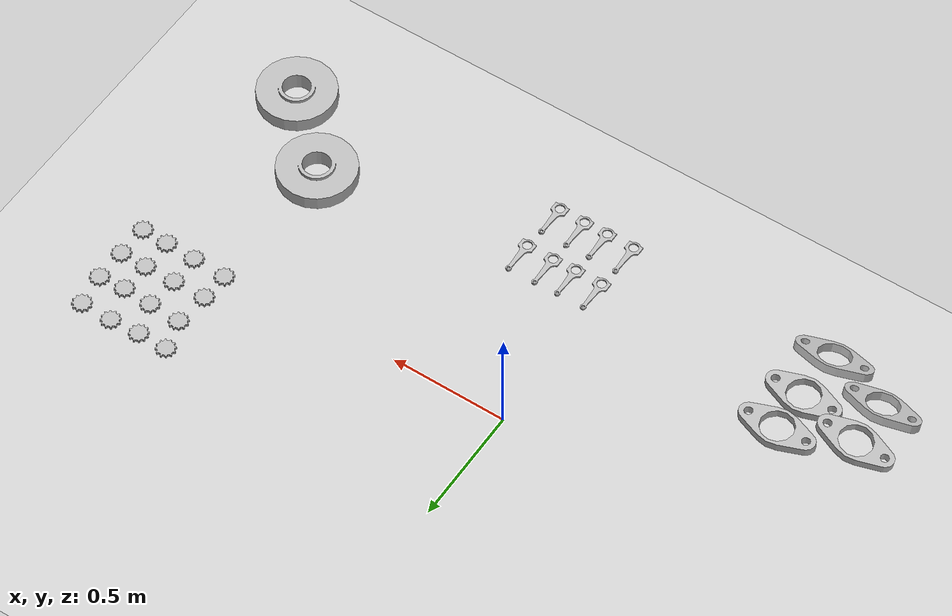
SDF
<sdf version="1.6">
 <world name="default">
  <light name="sun" type="directional">
   <pose>0 0 10 0 -0 0</pose>
   <diffuse>0.8 0.8 0.8 1</diffuse>
   <specular>0.1 0.1 0.1 1</specular>
   <attenuation>
    <range>1000</range>
    <constant>0.9</constant>
    <linear>0.01</linear>
    <quadratic>0.001</quadratic>
   </attenuation>
   <direction>-0.5 0.5 -1</direction>
  </light>
  <model name="ground_plane">
   <static>1</static>
   <link name="link">
    <collision name="collision">
     <geometry><plane><normal>0 0 1</normal><size>100 100</size></plane></geometry>
     <surface><friction><ode><mu>0.1</mu><mu2>0.05</mu2></ode></friction></surface>
    </collision>
    <visual name="visual">
     <cast_shadows>0</cast_shadows>
     <geometry><plane><normal>0 0 1</normal><size>100 100</size></plane></geometry>
     <material>
      <script><uri>file://media/materials/scripts/gazebo.material</uri><name>Gazebo/Grey</name></script>
     </material>
    </visual>
   </link>
  </model>
  <gravity>0 0 -9.8</gravity>
  <magnetic_field>6e-06 2.3e-05 -4.2e-05</magnetic_field>
  <atmosphere type="adiabatic"/>
  <physics name="default_physics" default="0" type="ode">
   <max_step_size>0.001</max_step_size>
   <real_time_factor>1</real_time_factor>
   <real_time_update_rate>1000</real_time_update_rate>
  </physics>
  <scene><ambient>0.4 0.4 0.4 1</ambient><background>0.7 0.7 0.7 1</background><shadows>1</shadows></scene>
  <spherical_coordinates>
   <surface_model>EARTH_WGS84</surface_model>
   <latitude_deg>0</latitude_deg>
   <longitude_deg>0</longitude_deg>
   <elevation>0</elevation>
   <heading_deg>0</heading_deg>
  </spherical_coordinates>
  <model name="disk_part">
   <link name="link">
    <inertial>
     <pose>0 0 0.02895 0 -0 0</pose>
     <mass>0.5</mass>
     <inertia>
      <ixx>0.00321218</ixx>
      <ixy>0</ixy>
      <ixz>0</ixz>
      <iyy>0.00321218</iyy>
      <iyz>0</iyz>
      <izz>0.00614499</izz>
     </inertia>
    </inertial>
    <collision name="collision">
     <pose>0 0 0.02895 0 -0 0</pose>
     <geometry><cylinder><length>0.0579</length><radius>0.15678</radius></cylinder></geometry>
    </collision>
    <visual name="visual">
     <geometry><mesh><uri>model://disk_part/meshes/disk.dae</uri><scale>1 1 1</scale></mesh></geometry>
     <material>
      <script>
       <uri>model://arm_part/materials/scripts</uri>
       <uri>model://arm_part/materials/textures</uri>
       <name>ArmPart/Diffuse</name>
      </script>
     </material>
    </visual>
   </link>
   <pose>1.18352 -0.375787 0.72499 0 -0 0</pose>
  </model>
  <model name="disk_part_clone">
   <link name="link">
    <inertial>
     <pose>0 0 0.02895 0 -0 0</pose>
     <mass>0.5</mass>
     <inertia>
      <ixx>0.00321218</ixx>
      <ixy>0</ixy>
      <ixz>0</ixz>
      <iyy>0.00321218</iyy>
      <iyz>0</iyz>
      <izz>0.00614499</izz>
     </inertia>
    </inertial>
    <collision name="collision">
     <pose>0 0 0.02895 0 -0 0</pose>
     <geometry><cylinder><length>0.0579</length><radius>0.15678</radius></cylinder></geometry>
    </collision>
    <visual name="visual">
     <geometry><mesh><uri>model://disk_part/meshes/disk.dae</uri><scale>1 1 1</scale></mesh></geometry>
     <material>
      <script>
       <uri>model://arm_part/materials/scripts</uri>
       <uri>model://arm_part/materials/textures</uri>
       <name>ArmPart/Diffuse</name>
      </script>
     </material>
    </visual>
   </link>
   <pose>0.909632 -0.118212 0.725007 -2.9e-05 3.3e-05 -8e-06</pose>
  </model>
  <model name="piston_rod_part">
   <link name="link">
    <inertial>
     <pose>0 0.05415 0.00355 0 -0 0</pose>
     <mass>0.5</mass>
     <inertia>
      <ixx>0.00109584</ixx>
      <ixy>0</ixy>
      <ixz>0</ixz>
      <iyy>4.23854e-05</iyy>
      <iyz>0</iyz>
      <izz>0.00113354</izz>
     </inertia>
    </inertial>
    <collision name="collision_1">
     <pose>0 0 0.00375 0 -0 0</pose>
     <geometry><box><size>0.059 0.052 0.0075</size></box></geometry>
     <surface><contact><ode><max_vel>0.1</max_vel><min_depth>0.001</min_depth></ode></contact></surface>
    </collision>
    <collision name="collision_2">
     <pose>0 0.08 0.00375 0 -0 0</pose>
     <geometry><box><size>0.031 0.11 0.0075</size></box></geometry>
     <surface><contact><ode><max_vel>0.1</max_vel><min_depth>0.001</min_depth></ode></contact></surface>
    </collision>
    <visual name="visual">
     <geometry>
      <mesh><uri>model://piston_rod_part/meshes/piston_rod.dae</uri><scale>0.25 0.25 0.25</scale></mesh>
     </geometry>
     <material>
      <script>
       <uri>model://arm_part/materials/scripts</uri>
       <uri>model://arm_part/materials/textures</uri>
       <name>ArmPart/Diffuse</name>
      </script>
     </material>
    </visual>
   </link>
   <pose>0.071775 -0.483737 0.724744 0 -0 0</pose>
  </model>
  <model name="piston_rod_part_clone">
   <link name="link">
    <inertial>
     <pose>0 0.05415 0.00355 0 -0 0</pose>
     <mass>0.5</mass>
     <inertia>
      <ixx>0.00109584</ixx>
      <ixy>0</ixy>
      <ixz>0</ixz>
      <iyy>4.23854e-05</iyy>
      <iyz>0</iyz>
      <izz>0.00113354</izz>
     </inertia>
    </inertial>
    <collision name="collision_1">
     <pose>0 0 0.00375 0 -0 0</pose>
     <geometry><box><size>0.059 0.052 0.0075</size></box></geometry>
     <surface><contact><ode><max_vel>0.1</max_vel><min_depth>0.001</min_depth></ode></contact></surface>
    </collision>
    <collision name="collision_2">
     <pose>0 0.08 0.00375 0 -0 0</pose>
     <geometry><box><size>0.031 0.11 0.0075</size></box></geometry>
     <surface><contact><ode><max_vel>0.1</max_vel><min_depth>0.001</min_depth></ode></contact></surface>
    </collision>
    <visual name="visual">
     <geometry>
      <mesh><uri>model://piston_rod_part/meshes/piston_rod.dae</uri><scale>0.25 0.25 0.25</scale></mesh>
     </geometry>
     <material>
      <script>
       <uri>model://arm_part/materials/scripts</uri>
       <uri>model://arm_part/materials/textures</uri>
       <name>ArmPart/Diffuse</name>
      </script>
     </material>
    </visual>
   </link>
   <pose>-0.037775 -0.482662 0.724744 0 -0 0</pose>
  </model>
  <model name="piston_rod_part_clone_0">
   <link name="link">
    <inertial>
     <pose>0 0.05415 0.00355 0 -0 0</pose>
     <mass>0.5</mass>
     <inertia>
      <ixx>0.00109584</ixx>
      <ixy>0</ixy>
      <ixz>0</ixz>
      <iyy>4.23854e-05</iyy>
      <iyz>0</iyz>
      <izz>0.00113354</izz>
     </inertia>
    </inertial>
    <collision name="collision_1">
     <pose>0 0 0.00375 0 -0 0</pose>
     <geometry><box><size>0.059 0.052 0.0075</size></box></geometry>
     <surface><contact><ode><max_vel>0.1</max_vel><min_depth>0.001</min_depth></ode></contact></surface>
    </collision>
    <collision name="collision_2">
     <pose>0 0.08 0.00375 0 -0 0</pose>
     <geometry><box><size>0.031 0.11 0.0075</size></box></geometry>
     <surface><contact><ode><max_vel>0.1</max_vel><min_depth>0.001</min_depth></ode></contact></surface>
    </collision>
    <visual name="visual">
     <geometry>
      <mesh><uri>model://piston_rod_part/meshes/piston_rod.dae</uri><scale>0.25 0.25 0.25</scale></mesh>
     </geometry>
     <material>
      <script>
       <uri>model://arm_part/materials/scripts</uri>
       <uri>model://arm_part/materials/textures</uri>
       <name>ArmPart/Diffuse</name>
      </script>
     </material>
    </visual>
   </link>
   <pose>-0.13674 -0.483777 0.724744 0 -0 0</pose>
  </model>
  <model name="piston_rod_part_clone_1">
   <link name="link">
    <inertial>
     <pose>0 0.05415 0.00355 0 -0 0</pose>
     <mass>0.5</mass>
     <inertia>
      <ixx>0.00109584</ixx>
      <ixy>0</ixy>
      <ixz>0</ixz>
      <iyy>4.23854e-05</iyy>
      <iyz>0</iyz>
      <izz>0.00113354</izz>
     </inertia>
    </inertial>
    <collision name="collision_1">
     <pose>0 0 0.00375 0 -0 0</pose>
     <geometry><box><size>0.059 0.052 0.0075</size></box></geometry>
     <surface><contact><ode><max_vel>0.1</max_vel><min_depth>0.001</min_depth></ode></contact></surface>
    </collision>
    <collision name="collision_2">
     <pose>0 0.08 0.00375 0 -0 0</pose>
     <geometry><box><size>0.031 0.11 0.0075</size></box></geometry>
     <surface><contact><ode><max_vel>0.1</max_vel><min_depth>0.001</min_depth></ode></contact></surface>
    </collision>
    <visual name="visual">
     <geometry>
      <mesh><uri>model://piston_rod_part/meshes/piston_rod.dae</uri><scale>0.25 0.25 0.25</scale></mesh>
     </geometry>
     <material>
      <script>
       <uri>model://arm_part/materials/scripts</uri>
       <uri>model://arm_part/materials/textures</uri>
       <name>ArmPart/Diffuse</name>
      </script>
     </material>
    </visual>
   </link>
   <pose>-0.251597 -0.484031 0.724744 0 -0 0</pose>
  </model>
  <model name="piston_rod_part_clone_2">
   <link name="link">
    <inertial>
     <pose>0 0.05415 0.00355 0 -0 0</pose>
     <mass>0.5</mass>
     <inertia>
      <ixx>0.00109584</ixx>
      <ixy>0</ixy>
      <ixz>0</ixz>
      <iyy>4.23854e-05</iyy>
      <iyz>0</iyz>
      <izz>0.00113354</izz>
     </inertia>
    </inertial>
    <collision name="collision_1">
     <pose>0 0 0.00375 0 -0 0</pose>
     <geometry><box><size>0.059 0.052 0.0075</size></box></geometry>
     <surface><contact><ode><max_vel>0.1</max_vel><min_depth>0.001</min_depth></ode></contact></surface>
    </collision>
    <collision name="collision_2">
     <pose>0 0.08 0.00375 0 -0 0</pose>
     <geometry><box><size>0.031 0.11 0.0075</size></box></geometry>
     <surface><contact><ode><max_vel>0.1</max_vel><min_depth>0.001</min_depth></ode></contact></surface>
    </collision>
    <visual name="visual">
     <geometry>
      <mesh><uri>model://piston_rod_part/meshes/piston_rod.dae</uri><scale>0.25 0.25 0.25</scale></mesh>
     </geometry>
     <material>
      <script>
       <uri>model://arm_part/materials/scripts</uri>
       <uri>model://arm_part/materials/textures</uri>
       <name>ArmPart/Diffuse</name>
      </script>
     </material>
    </visual>
   </link>
   <pose>0.07925 -0.276544 0.724744 0 -0 0</pose>
  </model>
  <model name="piston_rod_part_clone_3">
   <link name="link">
    <inertial>
     <pose>0 0.05415 0.00355 0 -0 0</pose>
     <mass>0.5</mass>
     <inertia>
      <ixx>0.00109584</ixx>
      <ixy>0</ixy>
      <ixz>0</ixz>
      <iyy>4.23854e-05</iyy>
      <iyz>0</iyz>
      <izz>0.00113354</izz>
     </inertia>
    </inertial>
    <collision name="collision_1">
     <pose>0 0 0.00375 0 -0 0</pose>
     <geometry><box><size>0.059 0.052 0.0075</size></box></geometry>
     <surface><contact><ode><max_vel>0.1</max_vel><min_depth>0.001</min_depth></ode></contact></surface>
    </collision>
    <collision name="collision_2">
     <pose>0 0.08 0.00375 0 -0 0</pose>
     <geometry><box><size>0.031 0.11 0.0075</size></box></geometry>
     <surface><contact><ode><max_vel>0.1</max_vel><min_depth>0.001</min_depth></ode></contact></surface>
    </collision>
    <visual name="visual">
     <geometry>
      <mesh><uri>model://piston_rod_part/meshes/piston_rod.dae</uri><scale>0.25 0.25 0.25</scale></mesh>
     </geometry>
     <material>
      <script>
       <uri>model://arm_part/materials/scripts</uri>
       <uri>model://arm_part/materials/textures</uri>
       <name>ArmPart/Diffuse</name>
      </script>
     </material>
    </visual>
   </link>
   <pose>-0.034332 -0.276824 0.724744 0 -0 0</pose>
  </model>
  <model name="piston_rod_part_clone_4">
   <link name="link">
    <inertial>
     <pose>0 0.05415 0.00355 0 -0 0</pose>
     <mass>0.5</mass>
     <inertia>
      <ixx>0.00109584</ixx>
      <ixy>0</ixy>
      <ixz>0</ixz>
      <iyy>4.23854e-05</iyy>
      <iyz>0</iyz>
      <izz>0.00113354</izz>
     </inertia>
    </inertial>
    <collision name="collision_1">
     <pose>0 0 0.00375 0 -0 0</pose>
     <geometry><box><size>0.059 0.052 0.0075</size></box></geometry>
     <surface><contact><ode><max_vel>0.1</max_vel><min_depth>0.001</min_depth></ode></contact></surface>
    </collision>
    <collision name="collision_2">
     <pose>0 0.08 0.00375 0 -0 0</pose>
     <geometry><box><size>0.031 0.11 0.0075</size></box></geometry>
     <surface><contact><ode><max_vel>0.1</max_vel><min_depth>0.001</min_depth></ode></contact></surface>
    </collision>
    <visual name="visual">
     <geometry>
      <mesh><uri>model://piston_rod_part/meshes/piston_rod.dae</uri><scale>0.25 0.25 0.25</scale></mesh>
     </geometry>
     <material>
      <script>
       <uri>model://arm_part/materials/scripts</uri>
       <uri>model://arm_part/materials/textures</uri>
       <name>ArmPart/Diffuse</name>
      </script>
     </material>
    </visual>
   </link>
   <pose>-0.130835 -0.280946 0.724744 0 -0 0</pose>
  </model>
  <model name="piston_rod_part_clone_5">
   <link name="link">
    <inertial>
     <pose>0 0.05415 0.00355 0 -0 0</pose>
     <mass>0.5</mass>
     <inertia>
      <ixx>0.00109584</ixx>
      <ixy>0</ixy>
      <ixz>0</ixz>
      <iyy>4.23854e-05</iyy>
      <iyz>0</iyz>
      <izz>0.00113354</izz>
     </inertia>
    </inertial>
    <collision name="collision_1">
     <pose>0 0 0.00375 0 -0 0</pose>
     <geometry><box><size>0.059 0.052 0.0075</size></box></geometry>
     <surface><contact><ode><max_vel>0.1</max_vel><min_depth>0.001</min_depth></ode></contact></surface>
    </collision>
    <collision name="collision_2">
     <pose>0 0.08 0.00375 0 -0 0</pose>
     <geometry><box><size>0.031 0.11 0.0075</size></box></geometry>
     <surface><contact><ode><max_vel>0.1</max_vel><min_depth>0.001</min_depth></ode></contact></surface>
    </collision>
    <visual name="visual">
     <geometry>
      <mesh><uri>model://piston_rod_part/meshes/piston_rod.dae</uri><scale>0.25 0.25 0.25</scale></mesh>
     </geometry>
     <material>
      <script>
       <uri>model://arm_part/materials/scripts</uri>
       <uri>model://arm_part/materials/textures</uri>
       <name>ArmPart/Diffuse</name>
      </script>
     </material>
    </visual>
   </link>
   <pose>-0.243121 -0.280902 0.724744 0 -0 0</pose>
  </model>
  <model name="gasket_part">
   <link name="link">
    <inertial>
     <pose>0 0 0.016955 0 -0 0</pose>
     <mass>0.5</mass>
     <inertia>
      <ixx>0.00107286</ixx>
      <ixy>0</ixy>
      <ixz>0</ixz>
      <iyy>0.00416708</iyy>
      <iyz>0</iyz>
      <izz>0.00514411</izz>
     </inertia>
    </inertial>
    <collision name="collision">
     <pose>0 0 0.016955 0 -0 0</pose>
     <geometry><box><size>0.31442 0.15684 0.03391</size></box></geometry>
    </collision>
    <visual name="visual">
     <geometry><mesh><uri>model://gasket_part/meshes/gasket.dae</uri><scale>1 1 1</scale></mesh></geometry>
     <material>
      <script>
       <uri>model://arm_part/materials/scripts</uri>
       <uri>model://arm_part/materials/textures</uri>
       <name>ArmPart/Diffuse</name>
      </script>
     </material>
    </visual>
   </link>
   <pose>-1.13131 -0.434738 0.75381 0.3537 0.010481 0.057385</pose>
  </model>
  <model name="gasket_part_clone">
   <link name="link">
    <inertial>
     <pose>0 0 0.016955 0 -0 0</pose>
     <mass>0.5</mass>
     <inertia>
      <ixx>0.00107286</ixx>
      <ixy>0</ixy>
      <ixz>0</ixz>
      <iyy>0.00416708</iyy>
      <iyz>0</iyz>
      <izz>0.00514411</izz>
     </inertia>
    </inertial>
    <collision name="collision">
     <pose>0 0 0.016955 0 -0 0</pose>
     <geometry><box><size>0.31442 0.15684 0.03391</size></box></geometry>
    </collision>
    <visual name="visual">
     <geometry><mesh><uri>model://gasket_part/meshes/gasket.dae</uri><scale>1 1 1</scale></mesh></geometry>
     <material>
      <script>
       <uri>model://arm_part/materials/scripts</uri>
       <uri>model://arm_part/materials/textures</uri>
       <name>ArmPart/Diffuse</name>
      </script>
     </material>
    </visual>
   </link>
   <pose>-1.11833 -0.254821 0.725 1.8e-05 1e-06 -0.022449</pose>
  </model>
  <model name="gasket_part_clone_0">
   <link name="link">
    <inertial>
     <pose>0 0 0.016955 0 -0 0</pose>
     <mass>0.5</mass>
     <inertia>
      <ixx>0.00107286</ixx>
      <ixy>0</ixy>
      <ixz>0</ixz>
      <iyy>0.00416708</iyy>
      <iyz>0</iyz>
      <izz>0.00514411</izz>
     </inertia>
    </inertial>
    <collision name="collision">
     <pose>0 0 0.016955 0 -0 0</pose>
     <geometry><box><size>0.31442 0.15684 0.03391</size></box></geometry>
    </collision>
    <visual name="visual">
     <geometry><mesh><uri>model://gasket_part/meshes/gasket.dae</uri><scale>1 1 1</scale></mesh></geometry>
     <material>
      <script>
       <uri>model://arm_part/materials/scripts</uri>
       <uri>model://arm_part/materials/textures</uri>
       <name>ArmPart/Diffuse</name>
      </script>
     </material>
    </visual>
   </link>
   <pose>-1.11188 -0.083787 0.724991 0.000117 -0 1.2e-05</pose>
  </model>
  <model name="gasket_part_clone_1">
   <link name="link">
    <inertial>
     <pose>0 0 0.016955 0 -0 0</pose>
     <mass>0.5</mass>
     <inertia>
      <ixx>0.00107286</ixx>
      <ixy>0</ixy>
      <ixz>0</ixz>
      <iyy>0.00416708</iyy>
      <iyz>0</iyz>
      <izz>0.00514411</izz>
     </inertia>
    </inertial>
    <collision name="collision">
     <pose>0 0 0.016955 0 -0 0</pose>
     <geometry><box><size>0.31442 0.15684 0.03391</size></box></geometry>
    </collision>
    <visual name="visual">
     <geometry><mesh><uri>model://gasket_part/meshes/gasket.dae</uri><scale>1 1 1</scale></mesh></geometry>
     <material>
      <script>
       <uri>model://arm_part/materials/scripts</uri>
       <uri>model://arm_part/materials/textures</uri>
       <name>ArmPart/Diffuse</name>
      </script>
     </material>
    </visual>
   </link>
   <pose>-1.37875 -0.173435 0.745388 -0.004117 -0.127998 0.007537</pose>
  </model>
  <model name="gasket_part_clone_2">
   <link name="link">
    <inertial>
     <pose>0 0 0.016955 0 -0 0</pose>
     <mass>0.5</mass>
     <inertia>
      <ixx>0.00107286</ixx>
      <ixy>0</ixy>
      <ixz>0</ixz>
      <iyy>0.00416708</iyy>
      <iyz>0</iyz>
      <izz>0.00514411</izz>
     </inertia>
    </inertial>
    <collision name="collision">
     <pose>0 0 0.016955 0 -0 0</pose>
     <geometry><box><size>0.31442 0.15684 0.03391</size></box></geometry>
    </collision>
    <visual name="visual">
     <geometry><mesh><uri>model://gasket_part/meshes/gasket.dae</uri><scale>1 1 1</scale></mesh></geometry>
     <material>
      <script>
       <uri>model://arm_part/materials/scripts</uri>
       <uri>model://arm_part/materials/textures</uri>
       <name>ArmPart/Diffuse</name>
      </script>
     </material>
    </visual>
   </link>
   <pose>-1.38308 -0.347728 0.752064 0.35266 -0.000478 -0.009648</pose>
  </model>
  <model name="gear_part">
   <link name="link">
    <inertial>
     <pose>0 0 0.005875 0 -0 0</pose>
     <mass>0.5</mass>
     <inertia>
      <ixx>0.000198203</ixx>
      <ixy>0</ixy>
      <ixz>0</ixz>
      <iyy>0.000198203</iyy>
      <iyz>0</iyz>
      <izz>0.000384405</izz>
     </inertia>
    </inertial>
    <collision name="collision">
     <pose>0 0 0.005875 0 -0 0</pose>
     <geometry><cylinder><length>0.012</length><radius>0.0392125</radius></cylinder></geometry>
     <surface><contact><ode><max_vel>0.1</max_vel><min_depth>0.001</min_depth></ode></contact></surface>
    </collision>
    <visual name="visual">
     <geometry><mesh><uri>model://gear_part/meshes/gear.dae</uri><scale>0.25 0.25 0.25</scale></mesh></geometry>
     <material>
      <script>
       <uri>model://arm_part/materials/scripts</uri>
       <uri>model://arm_part/materials/textures</uri>
       <name>ArmPart/Diffuse</name>
      </script>
     </material>
    </visual>
   </link>
   <pose>1.29297 0.450442 0.724603 0 -0 0</pose>
  </model>
  <model name="gear_part_clone">
   <link name="link">
    <inertial>
     <pose>0 0 0.005875 0 -0 0</pose>
     <mass>0.5</mass>
     <inertia>
      <ixx>0.000198203</ixx>
      <ixy>0</ixy>
      <ixz>0</ixz>
      <iyy>0.000198203</iyy>
      <iyz>0</iyz>
      <izz>0.000384405</izz>
     </inertia>
    </inertial>
    <collision name="collision">
     <pose>0 0 0.005875 0 -0 0</pose>
     <geometry><cylinder><length>0.012</length><radius>0.0392125</radius></cylinder></geometry>
     <surface><contact><ode><max_vel>0.1</max_vel><min_depth>0.001</min_depth></ode></contact></surface>
    </collision>
    <visual name="visual">
     <geometry><mesh><uri>model://gear_part/meshes/gear.dae</uri><scale>0.25 0.25 0.25</scale></mesh></geometry>
     <material>
      <script>
       <uri>model://arm_part/materials/scripts</uri>
       <uri>model://arm_part/materials/textures</uri>
       <name>ArmPart/Diffuse</name>
      </script>
     </material>
    </visual>
   </link>
   <pose>1.18312 0.452131 0.724603 0 -0 0</pose>
  </model>
  <model name="gear_part_clone_0">
   <link name="link">
    <inertial>
     <pose>0 0 0.005875 0 -0 0</pose>
     <mass>0.5</mass>
     <inertia>
      <ixx>0.000198203</ixx>
      <ixy>0</ixy>
      <ixz>0</ixz>
      <iyy>0.000198203</iyy>
      <iyz>0</iyz>
      <izz>0.000384405</izz>
     </inertia>
    </inertial>
    <collision name="collision">
     <pose>0 0 0.005875 0 -0 0</pose>
     <geometry><cylinder><length>0.012</length><radius>0.0392125</radius></cylinder></geometry>
     <surface><contact><ode><max_vel>0.1</max_vel><min_depth>0.001</min_depth></ode></contact></surface>
    </collision>
    <visual name="visual">
     <geometry><mesh><uri>model://gear_part/meshes/gear.dae</uri><scale>0.25 0.25 0.25</scale></mesh></geometry>
     <material>
      <script>
       <uri>model://arm_part/materials/scripts</uri>
       <uri>model://arm_part/materials/textures</uri>
       <name>ArmPart/Diffuse</name>
      </script>
     </material>
    </visual>
   </link>
   <pose>1.05814 0.454116 0.724603 0 -0 0</pose>
  </model>
  <model name="gear_part_clone_1">
   <link name="link">
    <inertial>
     <pose>0 0 0.005875 0 -0 0</pose>
     <mass>0.5</mass>
     <inertia>
      <ixx>0.000198203</ixx>
      <ixy>0</ixy>
      <ixz>0</ixz>
      <iyy>0.000198203</iyy>
      <iyz>0</iyz>
      <izz>0.000384405</izz>
     </inertia>
    </inertial>
    <collision name="collision">
     <pose>0 0 0.005875 0 -0 0</pose>
     <geometry><cylinder><length>0.012</length><radius>0.0392125</radius></cylinder></geometry>
     <surface><contact><ode><max_vel>0.1</max_vel><min_depth>0.001</min_depth></ode></contact></surface>
    </collision>
    <visual name="visual">
     <geometry><mesh><uri>model://gear_part/meshes/gear.dae</uri><scale>0.25 0.25 0.25</scale></mesh></geometry>
     <material>
      <script>
       <uri>model://arm_part/materials/scripts</uri>
       <uri>model://arm_part/materials/textures</uri>
       <name>ArmPart/Diffuse</name>
      </script>
     </material>
    </visual>
   </link>
   <pose>0.918428 0.458227 0.724603 0 -0 0</pose>
  </model>
  <model name="gear_part_clone_2">
   <link name="link">
    <inertial>
     <pose>0 0 0.005875 0 -0 0</pose>
     <mass>0.5</mass>
     <inertia>
      <ixx>0.000198203</ixx>
      <ixy>0</ixy>
      <ixz>0</ixz>
      <iyy>0.000198203</iyy>
      <iyz>0</iyz>
      <izz>0.000384405</izz>
     </inertia>
    </inertial>
    <collision name="collision">
     <pose>0 0 0.005875 0 -0 0</pose>
     <geometry><cylinder><length>0.012</length><radius>0.0392125</radius></cylinder></geometry>
     <surface><contact><ode><max_vel>0.1</max_vel><min_depth>0.001</min_depth></ode></contact></surface>
    </collision>
    <visual name="visual">
     <geometry><mesh><uri>model://gear_part/meshes/gear.dae</uri><scale>0.25 0.25 0.25</scale></mesh></geometry>
     <material>
      <script>
       <uri>model://arm_part/materials/scripts</uri>
       <uri>model://arm_part/materials/textures</uri>
       <name>ArmPart/Diffuse</name>
      </script>
     </material>
    </visual>
   </link>
   <pose>1.29469 0.580822 0.724603 0 -0 0</pose>
  </model>
  <model name="gear_part_clone_3">
   <link name="link">
    <inertial>
     <pose>0 0 0.005875 0 -0 0</pose>
     <mass>0.5</mass>
     <inertia>
      <ixx>0.000198203</ixx>
      <ixy>0</ixy>
      <ixz>0</ixz>
      <iyy>0.000198203</iyy>
      <iyz>0</iyz>
      <izz>0.000384405</izz>
     </inertia>
    </inertial>
    <collision name="collision">
     <pose>0 0 0.005875 0 -0 0</pose>
     <geometry><cylinder><length>0.012</length><radius>0.0392125</radius></cylinder></geometry>
     <surface><contact><ode><max_vel>0.1</max_vel><min_depth>0.001</min_depth></ode></contact></surface>
    </collision>
    <visual name="visual">
     <geometry><mesh><uri>model://gear_part/meshes/gear.dae</uri><scale>0.25 0.25 0.25</scale></mesh></geometry>
     <material>
      <script>
       <uri>model://arm_part/materials/scripts</uri>
       <uri>model://arm_part/materials/textures</uri>
       <name>ArmPart/Diffuse</name>
      </script>
     </material>
    </visual>
   </link>
   <pose>1.18486 0.58067 0.724603 0 -0 0</pose>
  </model>
  <model name="gear_part_clone_4">
   <link name="link">
    <inertial>
     <pose>0 0 0.005875 0 -0 0</pose>
     <mass>0.5</mass>
     <inertia>
      <ixx>0.000198203</ixx>
      <ixy>0</ixy>
      <ixz>0</ixz>
      <iyy>0.000198203</iyy>
      <iyz>0</iyz>
      <izz>0.000384405</izz>
     </inertia>
    </inertial>
    <collision name="collision">
     <pose>0 0 0.005875 0 -0 0</pose>
     <geometry><cylinder><length>0.012</length><radius>0.0392125</radius></cylinder></geometry>
     <surface><contact><ode><max_vel>0.1</max_vel><min_depth>0.001</min_depth></ode></contact></surface>
    </collision>
    <visual name="visual">
     <geometry><mesh><uri>model://gear_part/meshes/gear.dae</uri><scale>0.25 0.25 0.25</scale></mesh></geometry>
     <material>
      <script>
       <uri>model://arm_part/materials/scripts</uri>
       <uri>model://arm_part/materials/textures</uri>
       <name>ArmPart/Diffuse</name>
      </script>
     </material>
    </visual>
   </link>
   <pose>1.05809 0.577659 0.724603 0 -0 0</pose>
  </model>
  <model name="gear_part_clone_5">
   <link name="link">
    <inertial>
     <pose>0 0 0.005875 0 -0 0</pose>
     <mass>0.5</mass>
     <inertia>
      <ixx>0.000198203</ixx>
      <ixy>0</ixy>
      <ixz>0</ixz>
      <iyy>0.000198203</iyy>
      <iyz>0</iyz>
      <izz>0.000384405</izz>
     </inertia>
    </inertial>
    <collision name="collision">
     <pose>0 0 0.005875 0 -0 0</pose>
     <geometry><cylinder><length>0.012</length><radius>0.0392125</radius></cylinder></geometry>
     <surface><contact><ode><max_vel>0.1</max_vel><min_depth>0.001</min_depth></ode></contact></surface>
    </collision>
    <visual name="visual">
     <geometry><mesh><uri>model://gear_part/meshes/gear.dae</uri><scale>0.25 0.25 0.25</scale></mesh></geometry>
     <material>
      <script>
       <uri>model://arm_part/materials/scripts</uri>
       <uri>model://arm_part/materials/textures</uri>
       <name>ArmPart/Diffuse</name>
      </script>
     </material>
    </visual>
   </link>
   <pose>0.923999 0.574468 0.724603 0 -0 0</pose>
  </model>
  <model name="gear_part_clone_6">
   <link name="link">
    <inertial>
     <pose>0 0 0.005875 0 -0 0</pose>
     <mass>0.5</mass>
     <inertia>
      <ixx>0.000198203</ixx>
      <ixy>0</ixy>
      <ixz>0</ixz>
      <iyy>0.000198203</iyy>
      <iyz>0</iyz>
      <izz>0.000384405</izz>
     </inertia>
    </inertial>
    <collision name="collision">
     <pose>0 0 0.005875 0 -0 0</pose>
     <geometry><cylinder><length>0.012</length><radius>0.0392125</radius></cylinder></geometry>
     <surface><contact><ode><max_vel>0.1</max_vel><min_depth>0.001</min_depth></ode></contact></surface>
    </collision>
    <visual name="visual">
     <geometry><mesh><uri>model://gear_part/meshes/gear.dae</uri><scale>0.25 0.25 0.25</scale></mesh></geometry>
     <material>
      <script>
       <uri>model://arm_part/materials/scripts</uri>
       <uri>model://arm_part/materials/textures</uri>
       <name>ArmPart/Diffuse</name>
      </script>
     </material>
    </visual>
   </link>
   <pose>1.2959 0.710891 0.724603 0 -0 0</pose>
  </model>
  <model name="gear_part_clone_7">
   <link name="link">
    <inertial>
     <pose>0 0 0.005875 0 -0 0</pose>
     <mass>0.5</mass>
     <inertia>
      <ixx>0.000198203</ixx>
      <ixy>0</ixy>
      <ixz>0</ixz>
      <iyy>0.000198203</iyy>
      <iyz>0</iyz>
      <izz>0.000384405</izz>
     </inertia>
    </inertial>
    <collision name="collision">
     <pose>0 0 0.005875 0 -0 0</pose>
     <geometry><cylinder><length>0.012</length><radius>0.0392125</radius></cylinder></geometry>
     <surface><contact><ode><max_vel>0.1</max_vel><min_depth>0.001</min_depth></ode></contact></surface>
    </collision>
    <visual name="visual">
     <geometry><mesh><uri>model://gear_part/meshes/gear.dae</uri><scale>0.25 0.25 0.25</scale></mesh></geometry>
     <material>
      <script>
       <uri>model://arm_part/materials/scripts</uri>
       <uri>model://arm_part/materials/textures</uri>
       <name>ArmPart/Diffuse</name>
      </script>
     </material>
    </visual>
   </link>
   <pose>1.18923 0.703464 0.724603 0 -0 0</pose>
  </model>
  <model name="gear_part_clone_8">
   <link name="link">
    <inertial>
     <pose>0 0 0.005875 0 -0 0</pose>
     <mass>0.5</mass>
     <inertia>
      <ixx>0.000198203</ixx>
      <ixy>0</ixy>
      <ixz>0</ixz>
      <iyy>0.000198203</iyy>
      <iyz>0</iyz>
      <izz>0.000384405</izz>
     </inertia>
    </inertial>
    <collision name="collision">
     <pose>0 0 0.005875 0 -0 0</pose>
     <geometry><cylinder><length>0.012</length><radius>0.0392125</radius></cylinder></geometry>
     <surface><contact><ode><max_vel>0.1</max_vel><min_depth>0.001</min_depth></ode></contact></surface>
    </collision>
    <visual name="visual">
     <geometry><mesh><uri>model://gear_part/meshes/gear.dae</uri><scale>0.25 0.25 0.25</scale></mesh></geometry>
     <material>
      <script>
       <uri>model://arm_part/materials/scripts</uri>
       <uri>model://arm_part/materials/textures</uri>
       <name>ArmPart/Diffuse</name>
      </script>
     </material>
    </visual>
   </link>
   <pose>1.06988 0.707961 0.724603 0 -0 0</pose>
  </model>
  <model name="gear_part_clone_9">
   <link name="link">
    <inertial>
     <pose>0 0 0.005875 0 -0 0</pose>
     <mass>0.5</mass>
     <inertia>
      <ixx>0.000198203</ixx>
      <ixy>0</ixy>
      <ixz>0</ixz>
      <iyy>0.000198203</iyy>
      <iyz>0</iyz>
      <izz>0.000384405</izz>
     </inertia>
    </inertial>
    <collision name="collision">
     <pose>0 0 0.005875 0 -0 0</pose>
     <geometry><cylinder><length>0.012</length><radius>0.0392125</radius></cylinder></geometry>
     <surface><contact><ode><max_vel>0.1</max_vel><min_depth>0.001</min_depth></ode></contact></surface>
    </collision>
    <visual name="visual">
     <geometry><mesh><uri>model://gear_part/meshes/gear.dae</uri><scale>0.25 0.25 0.25</scale></mesh></geometry>
     <material>
      <script>
       <uri>model://arm_part/materials/scripts</uri>
       <uri>model://arm_part/materials/textures</uri>
       <name>ArmPart/Diffuse</name>
      </script>
     </material>
    </visual>
   </link>
   <pose>0.938444 0.712162 0.724603 0 -0 0</pose>
  </model>
  <model name="gear_part_clone_10">
   <link name="link">
    <inertial>
     <pose>0 0 0.005875 0 -0 0</pose>
     <mass>0.5</mass>
     <inertia>
      <ixx>0.000198203</ixx>
      <ixy>0</ixy>
      <ixz>0</ixz>
      <iyy>0.000198203</iyy>
      <iyz>0</iyz>
      <izz>0.000384405</izz>
     </inertia>
    </inertial>
    <collision name="collision">
     <pose>0 0 0.005875 0 -0 0</pose>
     <geometry><cylinder><length>0.012</length><radius>0.0392125</radius></cylinder></geometry>
     <surface><contact><ode><max_vel>0.1</max_vel><min_depth>0.001</min_depth></ode></contact></surface>
    </collision>
    <visual name="visual">
     <geometry><mesh><uri>model://gear_part/meshes/gear.dae</uri><scale>0.25 0.25 0.25</scale></mesh></geometry>
     <material>
      <script>
       <uri>model://arm_part/materials/scripts</uri>
       <uri>model://arm_part/materials/textures</uri>
       <name>ArmPart/Diffuse</name>
      </script>
     </material>
    </visual>
   </link>
   <pose>1.27763 0.841974 0.724603 0 -0 0</pose>
  </model>
  <model name="gear_part_clone_11">
   <link name="link">
    <inertial>
     <pose>0 0 0.005875 0 -0 0</pose>
     <mass>0.5</mass>
     <inertia>
      <ixx>0.000198203</ixx>
      <ixy>0</ixy>
      <ixz>0</ixz>
      <iyy>0.000198203</iyy>
      <iyz>0</iyz>
      <izz>0.000384405</izz>
     </inertia>
    </inertial>
    <collision name="collision">
     <pose>0 0 0.005875 0 -0 0</pose>
     <geometry><cylinder><length>0.012</length><radius>0.0392125</radius></cylinder></geometry>
     <surface><contact><ode><max_vel>0.1</max_vel><min_depth>0.001</min_depth></ode></contact></surface>
    </collision>
    <visual name="visual">
     <geometry><mesh><uri>model://gear_part/meshes/gear.dae</uri><scale>0.25 0.25 0.25</scale></mesh></geometry>
     <material>
      <script>
       <uri>model://arm_part/materials/scripts</uri>
       <uri>model://arm_part/materials/textures</uri>
       <name>ArmPart/Diffuse</name>
      </script>
     </material>
    </visual>
   </link>
   <pose>1.14673 0.843713 0.724603 0 -0 0</pose>
  </model>
  <model name="gear_part_clone_12">
   <link name="link">
    <inertial>
     <pose>0 0 0.005875 0 -0 0</pose>
     <mass>0.5</mass>
     <inertia>
      <ixx>0.000198203</ixx>
      <ixy>0</ixy>
      <ixz>0</ixz>
      <iyy>0.000198203</iyy>
      <iyz>0</iyz>
      <izz>0.000384405</izz>
     </inertia>
    </inertial>
    <collision name="collision">
     <pose>0 0 0.005875 0 -0 0</pose>
     <geometry><cylinder><length>0.012</length><radius>0.0392125</radius></cylinder></geometry>
     <surface><contact><ode><max_vel>0.1</max_vel><min_depth>0.001</min_depth></ode></contact></surface>
    </collision>
    <visual name="visual">
     <geometry><mesh><uri>model://gear_part/meshes/gear.dae</uri><scale>0.25 0.25 0.25</scale></mesh></geometry>
     <material>
      <script>
       <uri>model://arm_part/materials/scripts</uri>
       <uri>model://arm_part/materials/textures</uri>
       <name>ArmPart/Diffuse</name>
      </script>
     </material>
    </visual>
   </link>
   <pose>1.02592 0.835989 0.724603 0 -0 0</pose>
  </model>
  <model name="gear_part_clone_13">
   <link name="link">
    <inertial>
     <pose>0 0 0.005875 0 -0 0</pose>
     <mass>0.5</mass>
     <inertia>
      <ixx>0.000198203</ixx>
      <ixy>0</ixy>
      <ixz>0</ixz>
      <iyy>0.000198203</iyy>
      <iyz>0</iyz>
      <izz>0.000384405</izz>
     </inertia>
    </inertial>
    <collision name="collision">
     <pose>0 0 0.005875 0 -0 0</pose>
     <geometry><cylinder><length>0.012</length><radius>0.0392125</radius></cylinder></geometry>
     <surface><contact><ode><max_vel>0.1</max_vel><min_depth>0.001</min_depth></ode></contact></surface>
    </collision>
    <visual name="visual">
     <geometry><mesh><uri>model://gear_part/meshes/gear.dae</uri><scale>0.25 0.25 0.25</scale></mesh></geometry>
     <material>
      <script>
       <uri>model://arm_part/materials/scripts</uri>
       <uri>model://arm_part/materials/textures</uri>
       <name>ArmPart/Diffuse</name>
      </script>
     </material>
    </visual>
   </link>
   <pose>0.904829 0.835538 0.724603 0 -0 0</pose>
  </model>
 </world>
</sdf>
